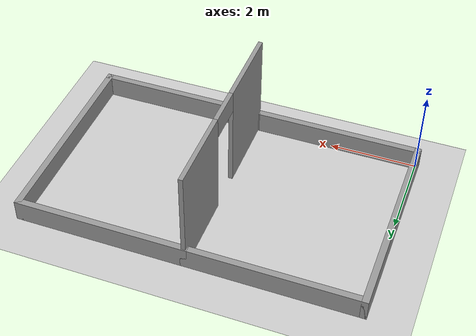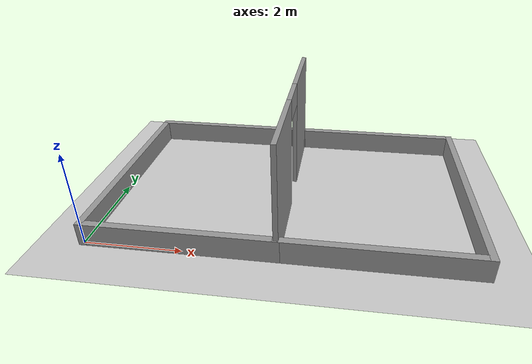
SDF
<sdf version="1.7">
 <world name="default">
  <light name="sun" type="directional">
   <pose>0 0 10 0 -0 0</pose>
   <diffuse>0.8 0.8 0.8 1</diffuse>
   <specular>0.2 0.2 0.2 1</specular>
   <attenuation>
    <range>1000</range>
    <constant>0.9</constant>
    <linear>0.01</linear>
    <quadratic>0.001</quadratic>
   </attenuation>
   <direction>-0.5 0.1 -0.9</direction>
   <spot><inner_angle>0</inner_angle><outer_angle>0</outer_angle><falloff>0</falloff></spot>
  </light>
  <model name="ground_plane">
   <static>1</static>
   <link name="link">
    <collision name="collision">
     <geometry><plane><normal>0 0 1</normal><size>100 100</size></plane></geometry>
     <surface>
      <contact><collide_bitmask>65535</collide_bitmask></contact>
      <friction><ode><mu>100</mu><mu2>50</mu2></ode></friction>
     </surface>
    </collision>
    <visual name="visual">
     <cast_shadows>0</cast_shadows>
     <geometry><plane><normal>0 0 1</normal><size>100 100</size></plane></geometry>
     <material>
      <script><uri>file://media/materials/scripts/gazebo.material</uri><name>Gazebo/Grey</name></script>
     </material>
    </visual>
   </link>
  </model>
  <gravity>0 0 -9.8</gravity>
  <magnetic_field>6e-06 2.3e-05 -4.2e-05</magnetic_field>
  <atmosphere type="adiabatic"/>
  <physics type="ode">
   <max_step_size>0.001</max_step_size>
   <real_time_factor>1</real_time_factor>
   <real_time_update_rate>1000</real_time_update_rate>
  </physics>
  <scene><ambient>0.4 0.4 0.4 1</ambient><background>0.7 0.7 0.7 1</background><shadows>1</shadows></scene>
  <spherical_coordinates>
   <surface_model>EARTH_WGS84</surface_model>
   <latitude_deg>0</latitude_deg>
   <longitude_deg>0</longitude_deg>
   <elevation>0</elevation>
   <heading_deg>0</heading_deg>
  </spherical_coordinates>
  <model name="door_traversal">
   <pose>3.85 2.3 0 0 -0 0</pose>
   <link name="Wall_14">
    <collision name="Wall_14_Collision">
     <geometry><box><size>4 0.15 0.5</size></box></geometry>
     <pose>0 0 0.25 0 -0 0</pose>
    </collision>
    <visual name="Wall_14_Visual">
     <pose>0 0 0.25 0 -0 0</pose>
     <geometry><box><size>4 0.15 0.5</size></box></geometry>
     <material>
      <script><uri>file://media/materials/scripts/gazebo.material</uri><name>Gazebo/Grey</name></script>
      <ambient>1 1 1 1</ambient>
     </material>
     <meta><layer>0</layer></meta>
    </visual>
    <pose>-1.925 2.3 0 0 -0 0</pose>
   </link>
   <link name="Wall_15">
    <pose>0 0 0 0 -0 -1.5708</pose>
    <visual name="Wall_15_Visual_0">
     <pose>-1.4027 0 1.25 0 -0 0</pose>
     <geometry><box><size>1.8946 0.1 2.5</size></box></geometry>
     <material>
      <script><uri>file://media/materials/scripts/gazebo.material</uri><name>Gazebo/Grey</name></script>
      <ambient>1 1 1 1</ambient>
     </material>
     <meta><layer>0</layer></meta>
    </visual>
    <collision name="Wall_15_Collision_0">
     <geometry><box><size>1.8946 0.1 2.5</size></box></geometry>
     <pose>-1.4027 0 1.25 0 -0 0</pose>
    </collision>
    <visual name="Wall_15_Visual_1">
     <pose>1.3973 0 1.25 0 -0 0</pose>
     <geometry><box><size>1.9054 0.1 2.5</size></box></geometry>
     <material>
      <script><uri>file://media/materials/scripts/gazebo.material</uri><name>Gazebo/Grey</name></script>
      <ambient>1 1 1 1</ambient>
     </material>
     <meta><layer>0</layer></meta>
    </visual>
    <collision name="Wall_15_Collision_1">
     <geometry><box><size>1.9054 0.1 2.5</size></box></geometry>
     <pose>1.3973 0 1.25 0 -0 0</pose>
    </collision>
    <visual name="Wall_15_Visual_2">
     <pose>-0.005397 0 2.25 0 -0 0</pose>
     <geometry><box><size>0.9 0.1 0.5</size></box></geometry>
     <material>
      <script><uri>file://media/materials/scripts/gazebo.material</uri><name>Gazebo/Grey</name></script>
      <ambient>1 1 1 1</ambient>
     </material>
     <meta><layer>0</layer></meta>
    </visual>
    <collision name="Wall_15_Collision_2">
     <geometry><box><size>0.9 0.1 0.5</size></box></geometry>
     <pose>-0.005397 0 2.25 0 -0 0</pose>
    </collision>
   </link>
   <link name="Wall_16">
    <collision name="Wall_16_Collision">
     <geometry><box><size>4 0.15 0.5</size></box></geometry>
     <pose>0 0 0.25 0 -0 0</pose>
    </collision>
    <visual name="Wall_16_Visual">
     <pose>0 0 0.25 0 -0 0</pose>
     <geometry><box><size>4 0.15 0.5</size></box></geometry>
     <material>
      <script><uri>file://media/materials/scripts/gazebo.material</uri><name>Gazebo/Grey</name></script>
      <ambient>1 1 1 1</ambient>
     </material>
     <meta><layer>0</layer></meta>
    </visual>
    <pose>-1.925 -2.3 0 0 -0 3.14159</pose>
   </link>
   <link name="Wall_18">
    <collision name="Wall_18_Collision">
     <geometry><box><size>4 0.15 0.5</size></box></geometry>
     <pose>0 0 0.25 0 -0 0</pose>
    </collision>
    <visual name="Wall_18_Visual">
     <pose>0 0 0.25 0 -0 0</pose>
     <geometry><box><size>4 0.15 0.5</size></box></geometry>
     <material>
      <script><uri>file://media/materials/scripts/gazebo.material</uri><name>Gazebo/Grey</name></script>
      <ambient>1 1 1 1</ambient>
     </material>
     <meta><layer>0</layer></meta>
    </visual>
    <pose>1.925 2.3 0 0 -0 0</pose>
   </link>
   <link name="Wall_19">
    <collision name="Wall_19_Collision">
     <geometry><box><size>4.75 0.15 0.5</size></box></geometry>
     <pose>0 0 0.25 0 -0 0</pose>
    </collision>
    <visual name="Wall_19_Visual">
     <pose>0 0 0.25 0 -0 0</pose>
     <geometry><box><size>4.75 0.15 0.5</size></box></geometry>
     <material>
      <script><uri>file://media/materials/scripts/gazebo.material</uri><name>Gazebo/Grey</name></script>
      <ambient>1 1 1 1</ambient>
     </material>
     <meta><layer>0</layer></meta>
    </visual>
    <pose>3.85 0 0 0 -0 -1.5708</pose>
   </link>
   <link name="Wall_20">
    <collision name="Wall_20_Collision">
     <geometry><box><size>4 0.15 0.5</size></box></geometry>
     <pose>0 0 0.25 0 -0 0</pose>
    </collision>
    <visual name="Wall_20_Visual">
     <pose>0 0 0.25 0 -0 0</pose>
     <geometry><box><size>4 0.15 0.5</size></box></geometry>
     <material>
      <script><uri>file://media/materials/scripts/gazebo.material</uri><name>Gazebo/Grey</name></script>
      <ambient>1 1 1 1</ambient>
     </material>
     <meta><layer>0</layer></meta>
    </visual>
    <pose>1.925 -2.3 0 0 -0 3.14159</pose>
   </link>
   <link name="Wall_7">
    <collision name="Wall_7_Collision">
     <geometry><box><size>4.75 0.15 0.5</size></box></geometry>
     <pose>0 0 0.25 0 -0 0</pose>
    </collision>
    <visual name="Wall_7_Visual">
     <pose>0 0 0.25 0 -0 0</pose>
     <geometry><box><size>4.75 0.15 0.5</size></box></geometry>
     <material>
      <script><uri>file://media/materials/scripts/gazebo.material</uri><name>Gazebo/Grey</name></script>
      <ambient>1 1 1 1</ambient>
     </material>
     <meta><layer>0</layer></meta>
    </visual>
    <pose>-3.85 0 0 0 -0 1.5708</pose>
   </link>
   <static>1</static>
  </model>
 </world>
</sdf>
